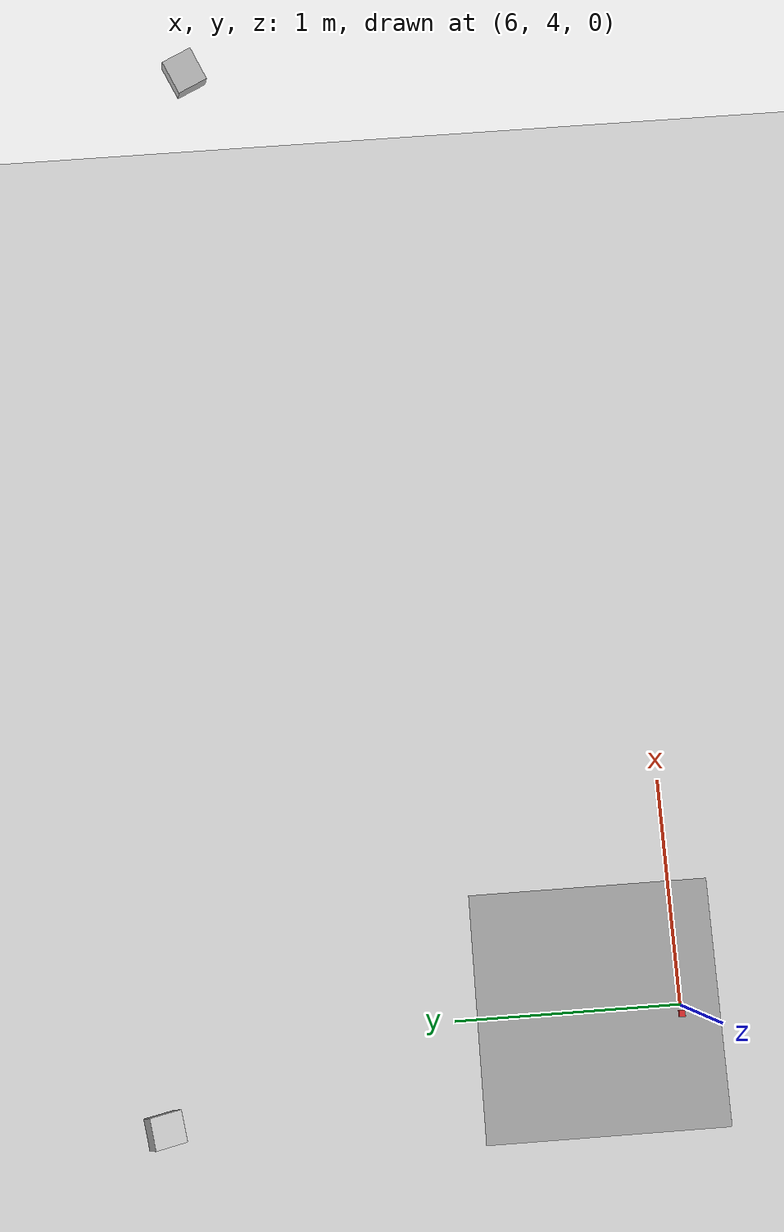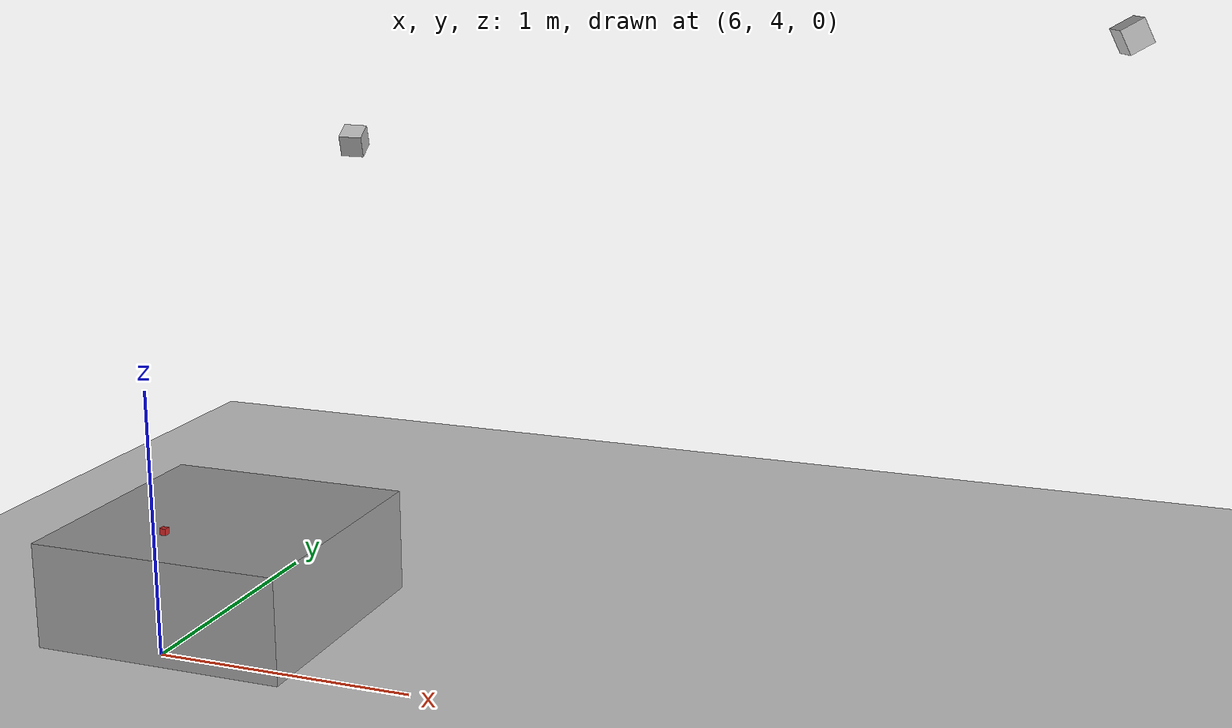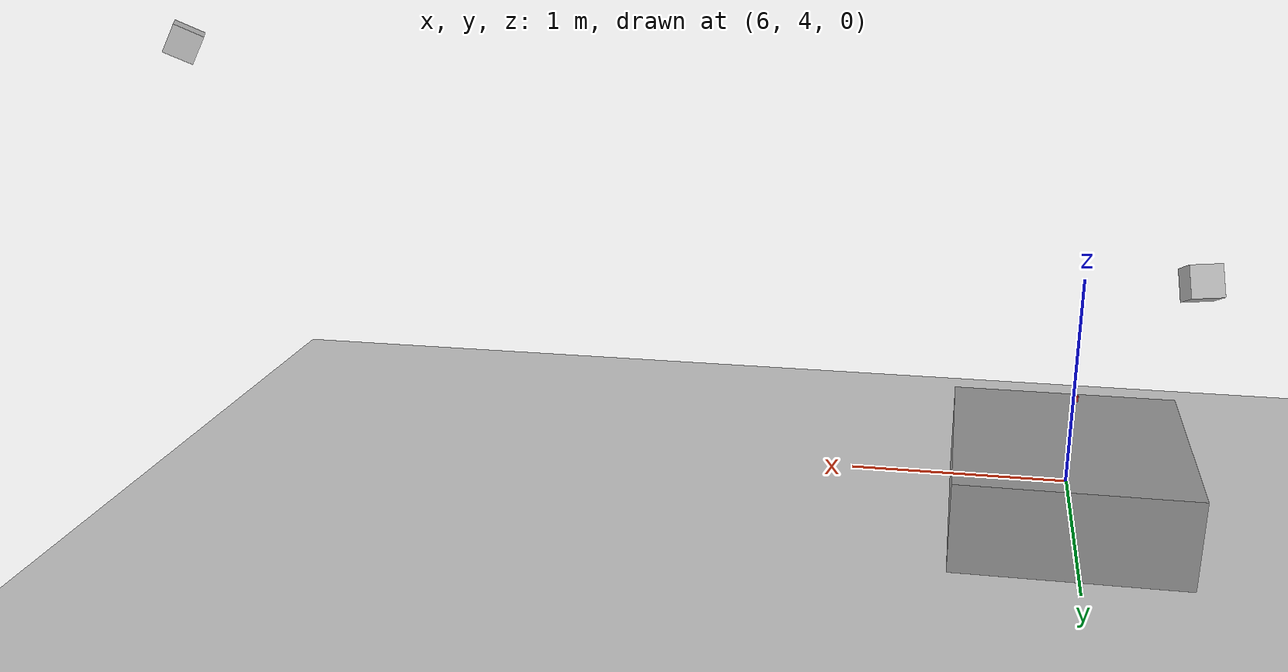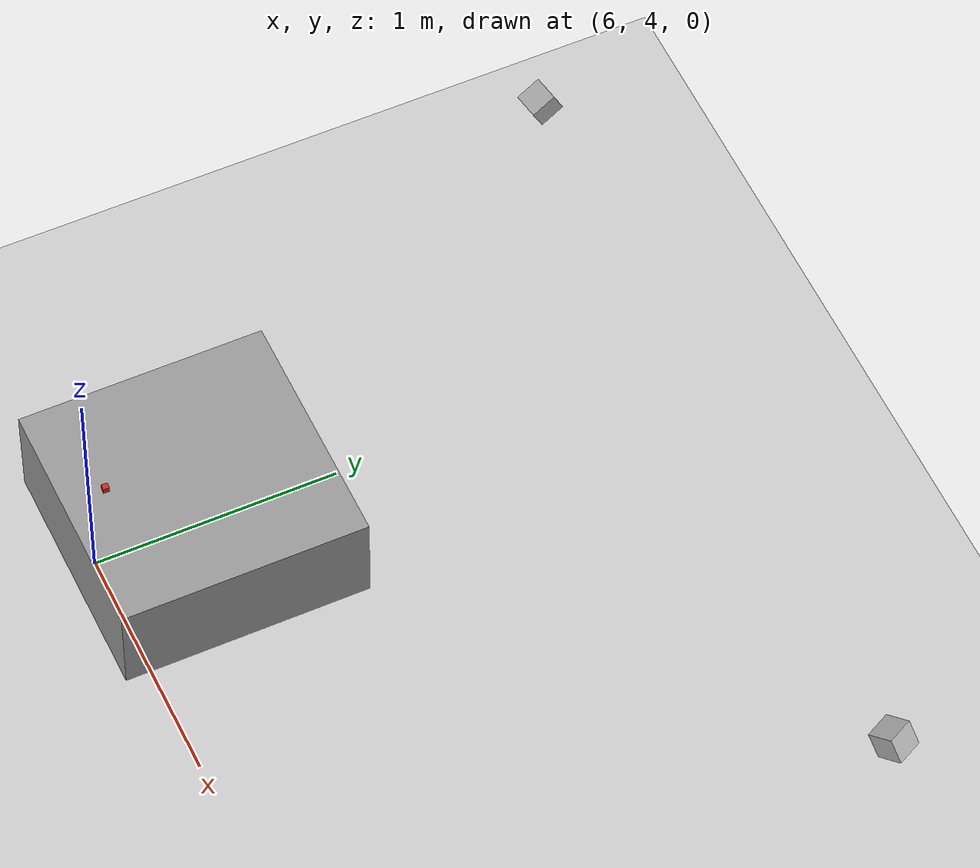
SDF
<sdf version="1.4">
 <world name="prueba1">
  <model name="ground_plane">
   <static>1</static>
   <link name="link">
    <collision name="collision">
     <geometry><plane><normal>0 0 1</normal><size>20 20</size></plane></geometry>
     <surface><friction><ode><mu>100</mu><mu2>50</mu2></ode></friction></surface>
    </collision>
    <visual name="visual">
     <cast_shadows>0</cast_shadows>
     <geometry><plane><normal>0 0 1</normal><size>20 20</size></plane></geometry>
     <material>
      <script><uri>file://media/materials/scripts/gazebo.material</uri><name>Gazebo/Grey</name></script>
     </material>
    </visual>
    <velocity_decay><linear>0</linear><angular>0</angular></velocity_decay>
   </link>
  </model>
  <light name="sun" type="directional">
   <pose>0 0 8 0 -0 0</pose>
   <diffuse>0.8 0.8 0.8 1</diffuse>
   <specular>0.2 0.2 0.2 1</specular>
   <attenuation>
    <range>100</range>
    <constant>0.9</constant>
    <linear>0.01</linear>
    <quadratic>0.001</quadratic>
   </attenuation>
   <direction>-0.5 0.1 -0.9</direction>
  </light>
  <physics type="ode">
   <max_step_size>0.001</max_step_size>
   <real_time_factor>1</real_time_factor>
   <real_time_update_rate>1000</real_time_update_rate>
   <gravity>0 0 -9.8</gravity>
  </physics>
  <scene><ambient>0.4 0.4 0.4 1</ambient><background>0.7 0.7 0.7 1</background><shadows>1</shadows></scene>
  <spherical_coordinates>
   <surface_model>EARTH_WGS84</surface_model>
   <latitude_deg>0</latitude_deg>
   <longitude_deg>0</longitude_deg>
   <elevation>0</elevation>
   <heading_deg>0</heading_deg>
  </spherical_coordinates>
  <model name="unit_box_1">
   <static>1</static>
   <pose>6.03826 4.40017 0.203548 4.03897e-28 -3e-06 1e-06</pose>
   <link name="link_box_1">
    <inertial>
     <mass>1</mass>
     <inertia><ixx>1</ixx><ixy>0</ixy><ixz>0</ixz><iyy>1</iyy><iyz>0</iyz><izz>1</izz></inertia>
    </inertial>
    <collision name="collision">
     <geometry><box><size>1 1 0.407127</size></box></geometry>
     <surface><friction><ode><mu>100</mu><mu2>50</mu2></ode></friction></surface>
    </collision>
    <visual name="visual">
     <geometry><box><size>1 1 0.407127</size></box></geometry>
     <material>
      <script><uri>file://media/materials/scripts/gazebo.material</uri><name>Gazebo/Grey</name></script>
     </material>
    </visual>
    <velocity_decay><linear>0</linear><angular>0</angular></velocity_decay>
   </link>
   <static>0</static>
  </model>
  <model name="unit_box_3">
   <pose>6.0 4.065 0.457141 -6e-06 1.2e-05 -0.032474</pose>
   <link name="link_box_3">
    <inertial>
     <mass>0.5</mass>
     <inertia><ixx>0.0001</ixx><ixy>0</ixy><ixz>0</ixz><iyy>5e-05</iyy><iyz>0</iyz><izz>0.0001</izz></inertia>
    </inertial>
    <collision name="collision"><geometry><box><size>0.025 0.025 0.025</size></box></geometry></collision>
    <visual name="visual">
     <geometry><box><size>0.025 0.025 0.025</size></box></geometry>
     <material>
      <script><uri>file://media/materials/scripts/gazebo.material</uri><name>Gazebo/Red</name></script>
     </material>
    </visual>
    <velocity_decay><linear>0</linear><angular>0</angular></velocity_decay>
   </link>
   <static>0</static>
  </model>
  <model name="camera">
   <pose>7.260992 4.429578 0.810606 0 0 1.664064</pose>
   <link name="link_camera">
    <pose>1 -2 1.40 0 0.486 1.946</pose>
    <inertial><mass>0.1</mass></inertial>
    <collision name="collision"><geometry><box><size>0.1 0.1 0.1</size></box></geometry></collision>
    <visual name="visual"><geometry><box><size>0.1 0.1 0.1</size></box></geometry></visual>
    <sensor name="camera" type="camera">
     <camera>
      <horizontal_fov>1.047</horizontal_fov>
      <image><width>640</width><height>480</height></image>
      <clip><near>0.1</near><far>100</far></clip>
      <save enabled="true"><path>/home/slabai/Video/Crumb/</path></save>
     </camera>
     <always_on>1</always_on>
     <update_rate>5</update_rate>
     <visualize>true</visualize>
    </sensor>
    <gravity>0</gravity>
   </link>
  </model>
  <model name="camera_clone">
   <pose>6.420788 3.684600 0.324349 0.050698 -0.018669 2.947205</pose>
   <link name="link_camera_clone">
    <pose>1 -2 1.40 0 0.486 1.946</pose>
    <inertial><mass>0.1</mass></inertial>
    <collision name="collision"><geometry><box><size>0.1 0.1 0.1</size></box></geometry></collision>
    <visual name="visual"><geometry><box><size>0.1 0.1 0.1</size></box></geometry></visual>
    <sensor name="camera" type="camera">
     <camera>
      <horizontal_fov>1.047</horizontal_fov>
      <image><width>640</width><height>480</height></image>
      <clip><near>0.1</near><far>100</far></clip>
      <save enabled="true"><path>/home/slabai/Video/Crumb/</path></save>
     </camera>
     <always_on>0</always_on>
     <update_rate>30</update_rate>
     <visualize>true</visualize>
    </sensor>
    <gravity>0</gravity>
   </link>
  </model>
 </world>
</sdf>
